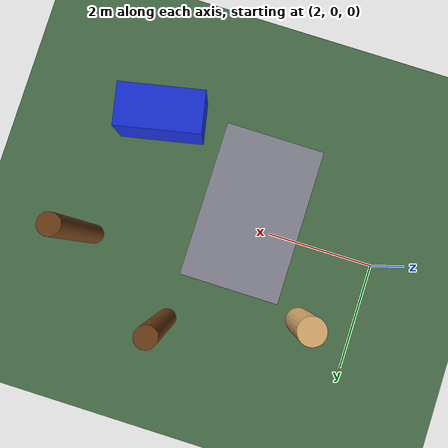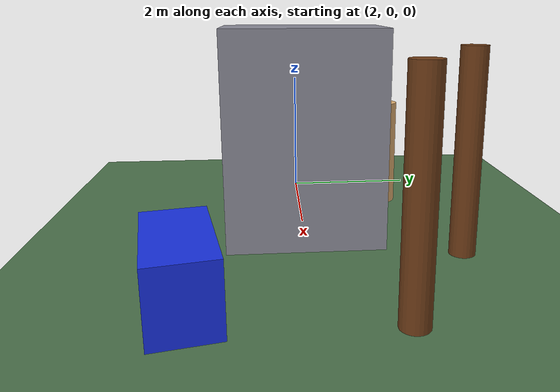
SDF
<?xml version="1.0" ?>
<sdf version="1.9">
  <world name="obstacle_course">
    <physics name="1ms" type="ignored">
      <max_step_size>0.001</max_step_size>
      <real_time_factor>1.0</real_time_factor>
    </physics>

    <plugin filename="gz-sim-physics-system" name="gz::sim::systems::Physics"/>
    <plugin filename="gz-sim-user-commands-system" name="gz::sim::systems::UserCommands"/>
    <plugin filename="gz-sim-scene-broadcaster-system" name="gz::sim::systems::SceneBroadcaster"/>
    <plugin filename="gz-sim-sensors-system" name="gz::sim::systems::Sensors">
      <render_engine>ogre2</render_engine>
    </plugin>
    <plugin filename="gz-sim-imu-system" name="gz::sim::systems::Imu"/>

    <gravity>0 0 -9.80665</gravity>
    <magnetic_field>6.0e-6 2.3e-5 -4.2e-5</magnetic_field>
    <atmosphere type="adiabatic"/>

    <scene>
      <ambient>0.5 0.5 0.5 1</ambient>
      <background>0.72 0.82 0.95 1</background>
      <shadows>true</shadows>
    </scene>

    <light name="sun" type="directional">
      <pose>0 0 10 0 0 0</pose>
      <cast_shadows>true</cast_shadows>
      <intensity>1</intensity>
      <direction>-0.5 0.1 -0.9</direction>
    </light>

    <model name="ground_plane">
      <static>true</static>
      <link name="link">
        <collision name="collision">
          <geometry>
            <plane>
              <normal>0 0 1</normal>
              <size>60 60</size>
            </plane>
          </geometry>
        </collision>
        <visual name="visual">
          <geometry>
            <plane>
              <normal>0 0 1</normal>
              <size>60 60</size>
            </plane>
          </geometry>
          <material>
            <ambient>0.3 0.45 0.3 1</ambient>
            <diffuse>0.3 0.45 0.3 1</diffuse>
          </material>
        </visual>
      </link>
    </model>

    <model name="building_box">
      <pose>4.5 0 1.5 0 0 0</pose>
      <static>true</static>
      <link name="link">
        <collision name="collision">
          <geometry><box><size>1.4 2.2 3.0</size></box></geometry>
        </collision>
        <visual name="visual">
          <geometry><box><size>1.4 2.2 3.0</size></box></geometry>
          <material>
            <ambient>0.55 0.55 0.6 1</ambient>
            <diffuse>0.55 0.55 0.6 1</diffuse>
          </material>
        </visual>
      </link>
    </model>

    <model name="vehicle_box">
      <pose>6.6 -1.5 0.45 0 0 0.2</pose>
      <static>true</static>
      <link name="link">
        <collision name="collision">
          <geometry><box><size>1.6 0.8 0.9</size></box></geometry>
        </collision>
        <visual name="visual">
          <geometry><box><size>1.6 0.8 0.9</size></box></geometry>
          <material>
            <ambient>0.1 0.2 0.9 1</ambient>
            <diffuse>0.1 0.2 0.9 1</diffuse>
          </material>
        </visual>
      </link>
    </model>

    <model name="human_cylinder">
      <pose>3.0 1.4 0.85 0 0 0</pose>
      <static>true</static>
      <link name="link">
        <collision name="collision">
          <geometry><cylinder><radius>0.25</radius><length>1.7</length></cylinder></geometry>
        </collision>
        <visual name="visual">
          <geometry><cylinder><radius>0.25</radius><length>1.7</length></cylinder></geometry>
          <material>
            <ambient>0.9 0.7 0.45 1</ambient>
            <diffuse>0.9 0.7 0.45 1</diffuse>
          </material>
        </visual>
      </link>
    </model>

    <model name="tree_left">
      <pose>5.4 2.1 1.4 0 0 0</pose>
      <static>true</static>
      <link name="trunk">
        <collision name="collision">
          <geometry><cylinder><radius>0.18</radius><length>2.8</length></cylinder></geometry>
        </collision>
        <visual name="visual">
          <geometry><cylinder><radius>0.18</radius><length>2.8</length></cylinder></geometry>
          <material>
            <ambient>0.45 0.25 0.1 1</ambient>
            <diffuse>0.45 0.25 0.1 1</diffuse>
          </material>
        </visual>
      </link>
    </model>

    <model name="tree_right">
      <pose>7.2 1.0 1.4 0 0 0</pose>
      <static>true</static>
      <link name="trunk">
        <collision name="collision">
          <geometry><cylinder><radius>0.18</radius><length>2.8</length></cylinder></geometry>
        </collision>
        <visual name="visual">
          <geometry><cylinder><radius>0.18</radius><length>2.8</length></cylinder></geometry>
          <material>
            <ambient>0.45 0.25 0.1 1</ambient>
            <diffuse>0.45 0.25 0.1 1</diffuse>
          </material>
        </visual>
      </link>
    </model>
  </world>
</sdf>
